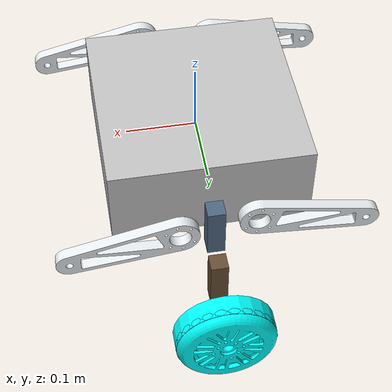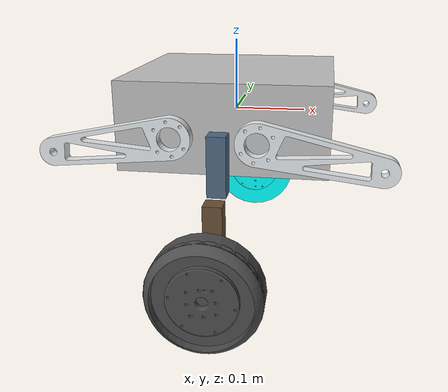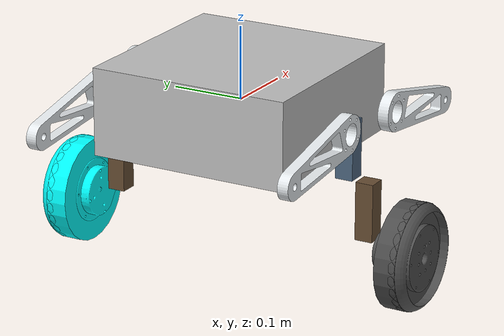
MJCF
<mujoco model="hector_gazebo">
  <compiler angle="radian" meshdir="../meshes/" autolimits="true"/>
  <statistic meansize="0.142362" extent="0.723933" center="-0.000164968 0.000944368 -0.0375921"/>
  <asset>
    <mesh name="l_wheel_link" file="l_wheel_link.STL"/>
    <mesh name="r_wheel_link" file="r_wheel_link.STL"/>
    <mesh name="l_f_mt_link" file="l_f_mt_link.STL"/>
    <mesh name="l_b_mt_link" file="l_b_mt_link.STL"/>
    <mesh name="r_f_mt_link" file="r_f_mt_link.STL"/>
    <mesh name="r_b_mt_link" file="r_b_mt_link.STL"/>
  </asset>
  <worldbody>
    <body name="base_link">
      <inertial pos="-0.000420506 -1.108e-05 -0.0249286" quat="0.498686 0.49878 -0.502212 0.500314" mass="7.01356" diaginertia="0.22301 0.16472 0.0822435"/>
      <joint name="base_link_free_joint" type="free"/>
      <geom size="0.14 0.14 0.06" type="box" contype="0" conaffinity="0" group="1" density="0" rgba="0.75294 0.75294 0.75294 1"/>
      <geom size="0.14 0.14 0.06" type="box" rgba="0.75294 0.75294 0.75294 1"/>
      <geom pos="0.054 0.2025 0" type="mesh" contype="0" conaffinity="0" group="1" density="0" rgba="0.89804 0.91765 0.92941 1" mesh="l_f_mt_link"/>
      <geom pos="0.054 0.2025 0" type="mesh" rgba="0.89804 0.91765 0.92941 1" mesh="l_f_mt_link"/>
      <geom pos="-0.054 0.2025 0" type="mesh" contype="0" conaffinity="0" group="1" density="0" rgba="0.89804 0.91765 0.92941 1" mesh="l_b_mt_link"/>
      <geom pos="-0.054 0.2025 0" type="mesh" rgba="0.89804 0.91765 0.92941 1" mesh="l_b_mt_link"/>
      <geom pos="0.054 -0.2025 0" type="mesh" contype="0" conaffinity="0" group="1" density="0" rgba="0.89804 0.91765 0.92941 1" mesh="r_f_mt_link"/>
      <geom pos="0.054 -0.2025 0" type="mesh" rgba="0.89804 0.91765 0.92941 1" mesh="r_f_mt_link"/>
      <geom pos="-0.054 -0.2025 0" type="mesh" contype="0" conaffinity="0" group="1" density="0" rgba="0.89804 0.91765 0.92941 1" mesh="r_b_mt_link"/>
      <geom pos="-0.054 -0.2025 0" type="mesh" rgba="0.89804 0.91765 0.92941 1" mesh="r_b_mt_link"/>
      <geom size="0.0005 0.0005 0.0005" type="box" contype="0" conaffinity="0" group="1" density="0"/>
      <geom size="0.0005 0.0005 0.0005" type="box"/>
      <body name="l_mt_link" pos="0 0.16 0">
        <inertial pos="0 0 0" quat="0.820473 0.339851 -0.17592 0.424708" mass="0.0001" diaginertia="1e-10 1e-10 1e-10"/>
        <joint name="l_mt_joint" pos="0 0 0" axis="0 1 0" range="-0.8 0.8"/>
        <geom size="0.0125 0.0125 0.04" pos="0 0 -0.04" type="box" contype="0" conaffinity="0" group="1" density="0" rgba="0.3 0.4 0.5 1"/>
        <geom size="0.0125 0.0125 0.04" pos="0 0 -0.04" type="box" rgba="0.3 0.4 0.5 1"/>
        <body name="l_p_link" pos="0 0 -0.08">
          <inertial pos="0 0 0" quat="0.820473 0.339851 -0.17592 0.424708" mass="0.0001" diaginertia="1e-10 1e-10 1e-10"/>
          <joint name="l_p_joint" pos="0 0 0" axis="0 0 1" type="slide" range="-0.18 0.08"/>
          <geom size="0.0125 0.0125 0.04" pos="0 0.03 -0.04" type="box" contype="0" conaffinity="0" group="1" density="0" rgba="0.4 0.3 0.2 1"/>
          <geom size="0.0125 0.0125 0.04" pos="0 0.03 -0.04" type="box" rgba="0.4 0.3 0.2 1"/>
          <body name="l_wheel_link" pos="0 0.1 -0.091525">
            <inertial pos="6.7739e-06 -0.003652 4.26e-06" quat="0.270602 0.653253 0.653298 0.270625" mass="0.43397" diaginertia="0.0010009 0.000539513 0.000539487"/>
            <joint name="l_wheel_joint" pos="0 0 0" axis="0 1 0" range="-100000 100000"/>
            <geom type="mesh" contype="0" conaffinity="0" group="1" density="0" rgba="0 1 1 1" mesh="l_wheel_link"/>
            <geom size="0.0725 0.015" pos="0 -0.01 0" quat="0.707107 0.707107 0 0" type="cylinder" rgba="0 1 1 1"/>
          </body>
        </body>
      </body>
      <body name="r_mt_link" pos="0 -0.16 0">
        <inertial pos="0 0 0" quat="0.820473 0.339851 -0.17592 0.424708" mass="0.0001" diaginertia="1e-10 1e-10 1e-10"/>
        <joint name="r_mt_joint" pos="0 0 0" axis="0 1 0" range="-0.8 0.8"/>
        <geom size="0.0125 0.0125 0.04" pos="0 0 -0.04" type="box" contype="0" conaffinity="0" group="1" density="0" rgba="0.3 0.4 0.5 1"/>
        <geom size="0.0125 0.0125 0.04" pos="0 0 -0.04" type="box" rgba="0.3 0.4 0.5 1"/>
        <body name="r_p_link" pos="0 0 -0.08">
          <inertial pos="0 0 0" quat="0.820473 0.339851 -0.17592 0.424708" mass="0.0001" diaginertia="1e-10 1e-10 1e-10"/>
          <joint name="r_p_joint" pos="0 0 0" axis="0 0 1" type="slide" range="-0.18 0.08"/>
          <geom size="0.0125 0.0125 0.04" pos="0 -0.03 -0.04" type="box" contype="0" conaffinity="0" group="1" density="0" rgba="0.4 0.3 0.2 1"/>
          <geom size="0.0125 0.0125 0.04" pos="0 -0.03 -0.04" type="box" rgba="0.4 0.3 0.2 1"/>
          <body name="r_wheel_link" pos="0 -0.1 -0.091525">
            <inertial pos="-2.3366e-06 0.0089279 -8.278e-06" quat="0.402437 0.58143 0.581444 0.402377" mass="0.40373" diaginertia="0.00081663 0.000440363 0.000440337"/>
            <joint name="r_wheel_joint" pos="0 0 0" axis="0 1 0" range="-100000 100000"/>
            <geom type="mesh" contype="0" conaffinity="0" group="1" density="0" rgba="0.29804 0.29804 0.29804 1" mesh="r_wheel_link"/>
            <geom size="0.0725 0.015" pos="0 0.01 0" quat="0.707107 0.707107 0 0" type="cylinder" rgba="0.29804 0.29804 0.29804 1"/>
          </body>
        </body>
      </body>
    </body>
  </worldbody>
</mujoco>
